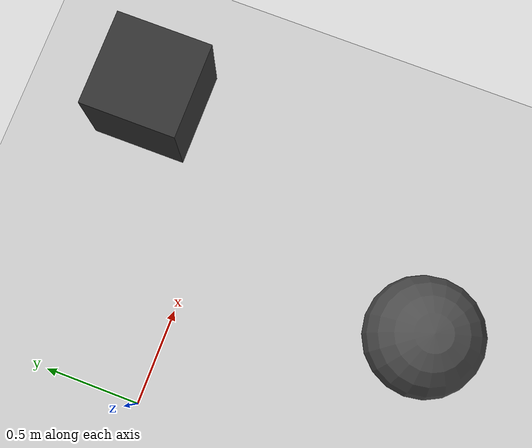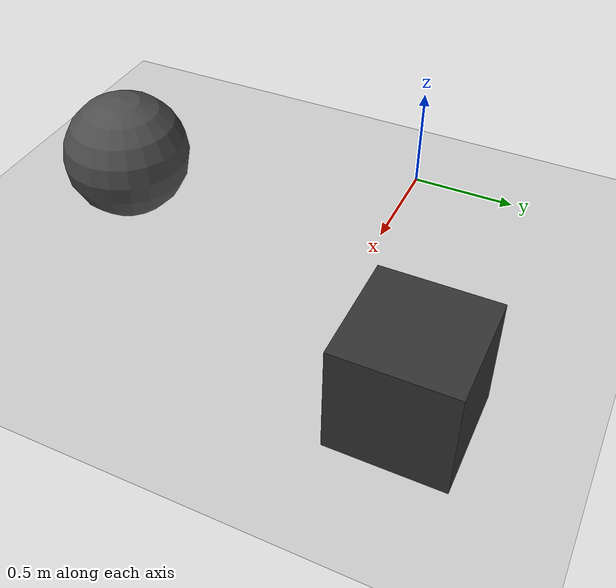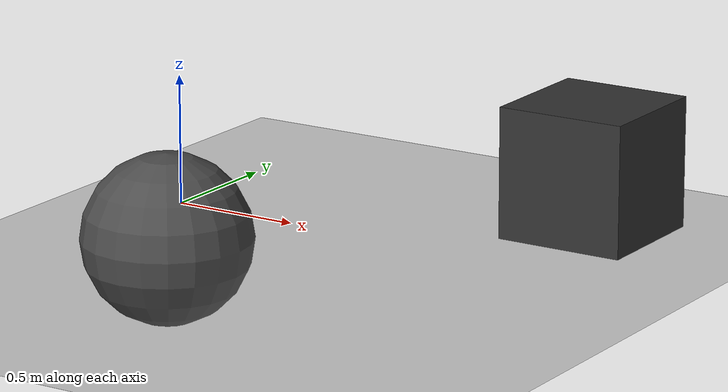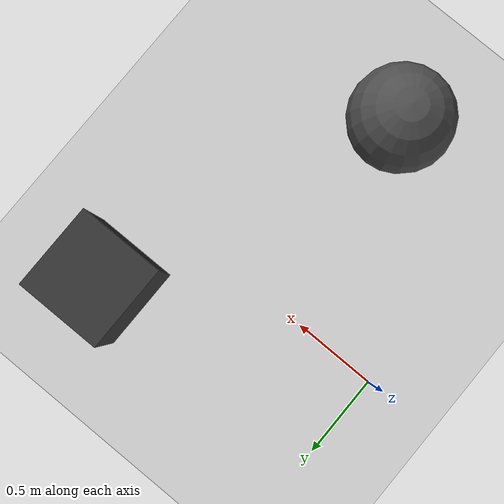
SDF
<?xml version="1.0" ?>
<sdf version="1.8">
  <world name="empty_world">
    <physics name="1ms" type="ignored">
      <max_step_size>0.001</max_step_size>
      <real_time_factor>1.0</real_time_factor>
    </physics>
    <plugin filename="gz-sim-physics-system" name="gz::sim::systems::Physics"/>
    <plugin filename="gz-sim-user-commands-system" name="gz::sim::systems::UserCommands"/>
    <plugin filename="gz-sim-scene-broadcaster-system" name="gz::sim::systems::SceneBroadcaster"/>
    <plugin filename="gz-sim-sensors-system" name="gz::sim::systems::Sensors">
      <render_engine>ogre2</render_engine>
    </plugin>

    <light type="directional" name="sun">
      <cast_shadows>true</cast_shadows>
      <pose>0 0 10 0 0 0</pose>
      <diffuse>0.8 0.8 0.8 1</diffuse>
      <specular>0.2 0.2 0.2 1</specular>
      <direction>-0.5 0.1 -0.9</direction>
    </light>

    <model name="ground_plane">
      <static>true</static>
      <link name="link">
        <collision name="collision">
          <geometry><plane><normal>0 0 1</normal><size>100 100</size></plane></geometry>
        </collision>
        <visual name="visual">
          <geometry><plane><normal>0 0 1</normal><size>100 100</size></plane></geometry>
          <material><ambient>0.8 0.8 0.8 1</ambient><diffuse>0.8 0.8 0.8 1</diffuse></material>
        </visual>
      </link>
    </model>

    <!-- Obstáculo 1: Cubo frente al robot -->
    <model name="box_obstacle">
      <pose>1.5 0.5 0.25 0 0 0</pose>
      <link name="link">
        <collision name="collision">
          <geometry><box><size>0.5 0.5 0.5</size></box></geometry>
        </collision>
        <visual name="visual">
          <geometry><box><size>0.5 0.5 0.5</size></box></geometry>
          <material><ambient>0.2 0.2 0.2 1</ambient><diffuse>0.2 0.2 0.2 1</diffuse></material>
        </visual>
      </link>
    </model>

    <!-- Obstáculo 2: Esfera al costado -->
    <model name="sphere_obstacle">
      <pose>0.8 -1.2 0.3 0 0 0</pose>
      <link name="link">
        <collision name="collision">
          <geometry><sphere><radius>0.3</radius></sphere></geometry>
        </collision>
        <visual name="visual">
          <geometry><sphere><radius>0.3</radius></sphere></geometry>
          <material><ambient>0.3 0.3 0.3 1</ambient><diffuse>0.3 0.3 0.3 1</diffuse></material>
        </visual>
      </link>
    </model>
  </world>
</sdf>
